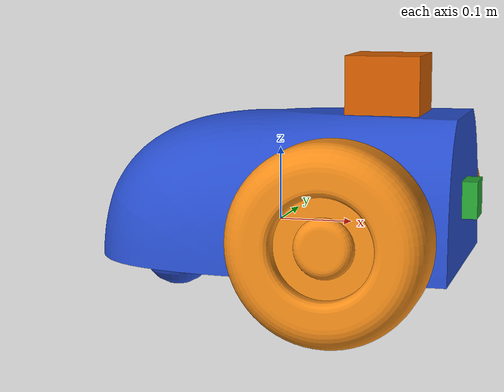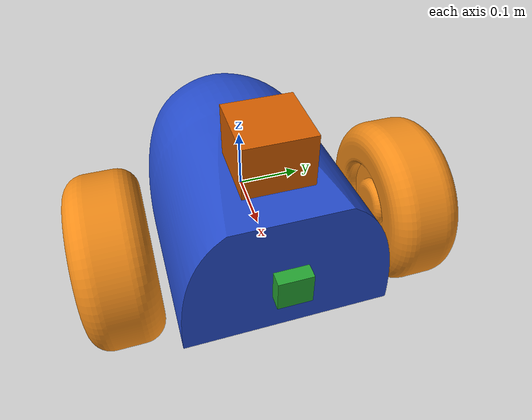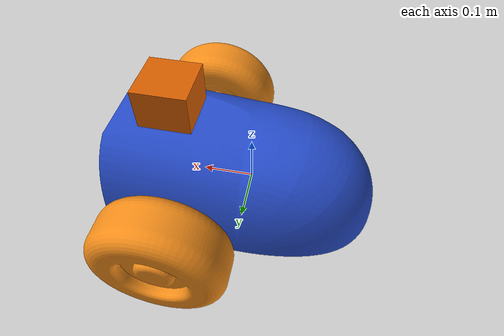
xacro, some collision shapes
<?xml version='1.0'?>

<robot name="my_robot" xmlns:xacro="http://www.ros.org/wiki/xacro">

<xacro:include filename="$(find my_robot)/urdf/my_robot.gazebo" />

  <link name="robot_footprint"></link>

  <joint name="robot_footprint_joint" type="fixed">
    <origin xyz="0 0 0" rpy="0 0 0" />
    <parent link="robot_footprint"/>
    <child link="chassis" />
  </joint>

  <link name='chassis'>
    <pose>0 0 0.1 0 0 0</pose>

    <inertial>
      <mass value="15.0"/>
      <origin xyz="0.0 0 .05" rpy=" 0 0 0"/>
      <inertia
          ixx="0.1" ixy="0" ixz="0"
          iyy="0.1" iyz="0"
          izz="0.1"
      />
    </inertial>

    <collision name='collision'>
      <origin xyz="0 0 .05" rpy=" 0 0 0"/>
      <geometry>
        <box size=".5 .3 .2"/>
      </geometry>
    </collision>

    <visual name='chassis_visual'>
      <origin xyz="0 0 .05" rpy=" 0 0 0"/>
      <geometry>
        <mesh filename="package://my_robot/meshes_2/robot_body_5.stl" size=".5 .3 .2"/>
      </geometry>
    </visual>

    <collision name='back_caster_collision'>
      <origin xyz="-0.15 0 -0.05" rpy=" 0 0 0"/>
      <geometry>
        <sphere radius="0.0499"/>
      </geometry>
    </collision>

    <visual name='back_caster_visual'>
      <origin xyz="-0.15 0 -0.05" rpy=" 0 0 0"/>
      <geometry>
        <sphere radius="0.05"/>
      </geometry>
    </visual>

  </link>

   <gazebo reference="chassis">
       <material>Gazebo/Blue</material>
   </gazebo>
  <gazebo reference="back_caster">
       <material>Gazebo/Red</material>
   </gazebo>

    <link name="left_wheel">

        <collision>
            <origin xyz="0 0 0" rpy="0 1.5707 1.5707"/>
            <geometry>
                <cylinder radius="0.10" length="0.065"/>
            </geometry>
        </collision>

        <inertial>
            <mass value="5"/>
            <origin xyz="0 0 0" rpy="0 1.5707 1.5707"/>
            <inertia
            ixx="0.1" ixy="0" ixz="0"
            iyy="0.1" iyz="0"
            izz="0.1"
            />
        </inertial>

        <visual>
            <origin xyz="0 0 0" rpy="0 1.5707 1.5707"/>
            <geometry>
                <mesh filename="package://my_robot/meshes_2/left_wheel.stl" size="0.10 0.10 0.065"/>
            </geometry>
        </visual>

    </link>

   <gazebo reference="left_wheel">
       <material>Gazebo/Orange</material>
   </gazebo>

  <joint name="left_wheel_hinge" type="continuous">
        <origin xyz=".12 0.22 .012" rpy="0 0 0"/>
        <child link="left_wheel"/>
        <parent link="chassis"/>
        <axis xyz="0 1 0" rpy="0 0 0"/>
        <limit effort="10000" velocity="1000"/>
        <dynamics damping="1.0" friction="1.0"/>
	<commandTopic>cmd_vel</commandTopic>
    </joint>

    <link name="right_wheel">

        <collision>
            <origin xyz="0 0 0" rpy="0 1.5707 1.5707"/>
            <geometry>
                <cylinder radius="0.11" length="0.075"/>
            </geometry>
        </collision>

        <inertial>
            <mass value="5"/>
            <origin xyz="0 0 0" rpy="0 1.5707 1.5707"/>
            <inertia
            ixx="0.1" ixy="0" ixz="0"
            iyy="0.1" iyz="0"
            izz="0.1"
            />
        </inertial>

        <visual>
            <origin xyz="0 0 0" rpy="0 1.5707 1.5707"/>
            <geometry>

                <mesh filename="package://my_robot/meshes_2/right_wheel.stl" size="0.10 0.10 0.065"/>
            </geometry>
        </visual>

    </link>

   <gazebo reference="right_wheel">
       <material>Gazebo/Orange</material>
   </gazebo>

  <joint name="right_wheel_hinge" type="continuous">
        <origin xyz=".12 -0.22 0.012" rpy="0 0 0"/>
        <child link="right_wheel"/>
        <parent link="chassis"/>
        <axis xyz="0 1 0" rpy="0 0 0"/>
        <limit effort="10000" velocity="1000"/>
        <dynamics damping="1.0" friction="1.0"/>
        <commandTopic>cmd_vel</commandTopic>
    </joint>

<link name="camera">

        <collision>
            <origin xyz="0 0 0" rpy="0 0 0"/>
            <geometry>
                <box size="0.05 0.05 0.05"/>
            </geometry>
        </collision>

        <inertial>
            <mass value="0.1"/>
            <origin xyz="0 0 0" rpy="0 0 0"/>
            <inertia
            ixx="1e-6" ixy="0" ixz="0"
            iyy="1e-6" iyz="0"
            izz="1e-6"
            />
        </inertial>

        <visual>
            <origin xyz="0 0 0" rpy="0 0 0"/>
            <geometry>
               <box size="0.05 0.05 0.05"/>
            </geometry>
        </visual>

    </link>

   <gazebo reference="camera">
       <material>Gazebo/Green</material>
   </gazebo>

  <joint name="camera_joint" type="fixed">
        <origin xyz="0.25 0 .04" rpy="0 0 0"/>
        <child link="camera"/>
        <parent link="chassis"/>
        <axis xyz="0 1 0" rpy="0 0 0"/>
        <imageTopicName>rgb/image_raw</imageTopicName>
    </joint>

<link name="hokuyo">

        <collision>
            <origin xyz="0 0 0" rpy="0 0 0"/>
            <geometry>
                <box size="0.1 0.1 0.1"/>
            </geometry>
        </collision>

        <inertial>
            <mass value="1e-5"/>
            <origin xyz="0 0 0" rpy="0 0 0"/>
            <inertia
            ixx="1e-6" ixy="0" ixz="0"
            iyy="1e-6" iyz="0"
            izz="1e-6"
            />
        </inertial>

        <visual>
            <origin xyz="0 0 0" rpy="0 0 0"/>
            <geometry>
               <mesh filename="package://my_robot/meshes/hokuyo.dae"/>
            </geometry>
        </visual>

    </link>

  <joint name="hokuyo_joint" type="fixed">
        <origin xyz="0.15 0 0.18" rpy="0 0 0"/>
        <child link="hokuyo"/>
        <parent link="chassis"/>
        <axis xyz="0 1 0" rpy="0 0 0"/>
        <topicName>/scan</topicName>
    </joint>

</robot>
